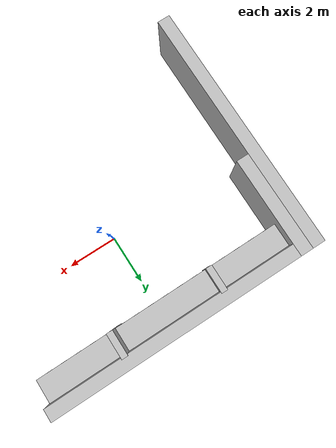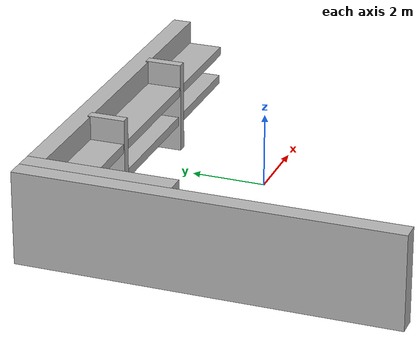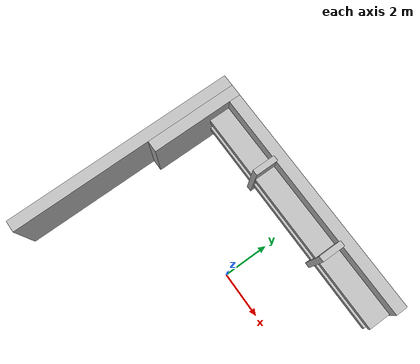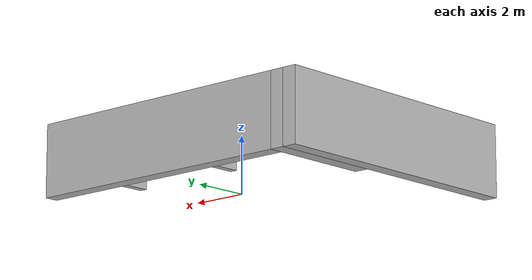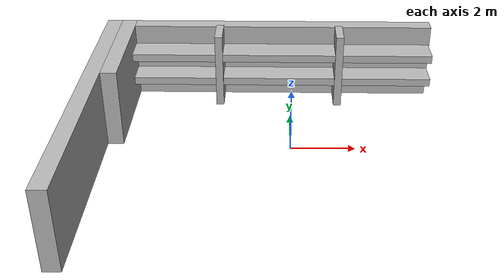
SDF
<?xml version='1.0'?>
<sdf version='1.6'>
  <model name='workspace_3'>
    <link name='link_0'>
      <inertial>
        <mass>1</mass>
        <inertia>
          <ixx>0.166667</ixx>
          <ixy>0</ixy>
          <ixz>0</ixz>
          <iyy>0.166667</iyy>
          <iyz>0</iyz>
          <izz>0.166667</izz>
        </inertia>
        <pose frame=''>0 0 0 0 -0 0</pose>
      </inertial>
      <pose frame=''>-6.00446 -0.625004 1.125 0 -0 0</pose>
      <gravity>1</gravity>
      <self_collide>0</self_collide>
      <kinematic>0</kinematic>
      <enable_wind>0</enable_wind>
      <visual name='visual'>
        <pose frame=''>0 0 0 0 -0 0</pose>
        <geometry>
          <box>
            <size>0.5 10 2.5</size>
          </box>
        </geometry>
        <material>
          <lighting>1</lighting>
          <shader type='vertex'>
            <normal_map>__default__</normal_map>
          </shader>
        </material>
        <transparency>0</transparency>
        <cast_shadows>1</cast_shadows>
      </visual>
      <collision name='collision'>
        <laser_retro>0</laser_retro>
        <max_contacts>10</max_contacts>
        <pose frame=''>0 0 0 0 -0 0</pose>
        <geometry>
          <box>
            <size>0.5 10 2.5</size>
          </box>
        </geometry>
        <surface>
          <friction>
            <ode>
              <mu>1</mu>
              <mu2>1</mu2>
              <fdir1>0 0 0</fdir1>
              <slip1>0</slip1>
              <slip2>0</slip2>
            </ode>
            <torsional>
              <coefficient>1</coefficient>
              <patch_radius>0</patch_radius>
              <surface_radius>0</surface_radius>
              <use_patch_radius>1</use_patch_radius>
              <ode>
                <slip>0</slip>
              </ode>
            </torsional>
          </friction>
          <bounce>
            <restitution_coefficient>0</restitution_coefficient>
            <threshold>1e+06</threshold>
          </bounce>
          <contact>
            <collide_without_contact>0</collide_without_contact>
            <collide_without_contact_bitmask>1</collide_without_contact_bitmask>
            <collide_bitmask>1</collide_bitmask>
            <ode>
              <soft_cfm>0</soft_cfm>
              <soft_erp>0.2</soft_erp>
              <kp>1e+13</kp>
              <kd>1</kd>
              <max_vel>0.01</max_vel>
              <min_depth>0</min_depth>
            </ode>
            <bullet>
              <split_impulse>1</split_impulse>
              <split_impulse_penetration_threshold>-0.01</split_impulse_penetration_threshold>
              <soft_cfm>0</soft_cfm>
              <soft_erp>0.2</soft_erp>
              <kp>1e+13</kp>
              <kd>1</kd>
            </bullet>
          </contact>
        </surface>
      </collision>
    </link>
    <link name='link_1'>
      <inertial>
        <mass>1</mass>
        <inertia>
          <ixx>0.166667</ixx>
          <ixy>0</ixy>
          <ixz>0</ixz>
          <iyy>0.166667</iyy>
          <iyz>0</iyz>
          <izz>0.166667</izz>
        </inertia>
        <pose frame=''>0 0 0 0 -0 0</pose>
      </inertial>
      <pose frame=''>-5.50446 2.375 1.125 0 -0 0</pose>
      <gravity>1</gravity>
      <self_collide>0</self_collide>
      <kinematic>0</kinematic>
      <enable_wind>0</enable_wind>
      <visual name='visual'>
        <pose frame=''>0 0 0 0 -0 0</pose>
        <geometry>
          <box>
            <size>0.5 4 2.5</size>
          </box>
        </geometry>
        <material>
          <lighting>1</lighting>
          <shader type='vertex'>
            <normal_map>__default__</normal_map>
          </shader>
        </material>
        <transparency>0</transparency>
        <cast_shadows>1</cast_shadows>
      </visual>
      <collision name='collision'>
        <laser_retro>0</laser_retro>
        <max_contacts>10</max_contacts>
        <pose frame=''>0 0 0 0 -0 0</pose>
        <geometry>
          <box>
            <size>0.5 4 2.5</size>
          </box>
        </geometry>
        <surface>
          <friction>
            <ode>
              <mu>1</mu>
              <mu2>1</mu2>
              <fdir1>0 0 0</fdir1>
              <slip1>0</slip1>
              <slip2>0</slip2>
            </ode>
            <torsional>
              <coefficient>1</coefficient>
              <patch_radius>0</patch_radius>
              <surface_radius>0</surface_radius>
              <use_patch_radius>1</use_patch_radius>
              <ode>
                <slip>0</slip>
              </ode>
            </torsional>
          </friction>
          <bounce>
            <restitution_coefficient>0</restitution_coefficient>
            <threshold>1e+06</threshold>
          </bounce>
          <contact>
            <collide_without_contact>0</collide_without_contact>
            <collide_without_contact_bitmask>1</collide_without_contact_bitmask>
            <collide_bitmask>1</collide_bitmask>
            <ode>
              <soft_cfm>0</soft_cfm>
              <soft_erp>0.2</soft_erp>
              <kp>1e+13</kp>
              <kd>1</kd>
              <max_vel>0.01</max_vel>
              <min_depth>0</min_depth>
            </ode>
            <bullet>
              <split_impulse>1</split_impulse>
              <split_impulse_penetration_threshold>-0.01</split_impulse_penetration_threshold>
              <soft_cfm>0</soft_cfm>
              <soft_erp>0.2</soft_erp>
              <kp>1e+13</kp>
              <kd>1</kd>
            </bullet>
          </contact>
        </surface>
      </collision>
    </link>
    <link name='link_2'>
      <inertial>
        <mass>1</mass>
        <inertia>
          <ixx>0.166667</ixx>
          <ixy>0</ixy>
          <ixz>0</ixz>
          <iyy>0.166667</iyy>
          <iyz>0</iyz>
          <izz>0.166667</izz>
        </inertia>
        <pose frame=''>0 0 0 0 -0 0</pose>
      </inertial>
      <pose frame=''>-0.254462 4.125 1.125 0 -0 0</pose>
      <gravity>1</gravity>
      <self_collide>0</self_collide>
      <kinematic>0</kinematic>
      <enable_wind>0</enable_wind>
      <visual name='visual'>
        <pose frame=''>0 0 0 0 -0 0</pose>
        <geometry>
          <box>
            <size>10 0.5 2.5</size>
          </box>
        </geometry>
        <material>
          <lighting>1</lighting>
          <shader type='vertex'>
            <normal_map>__default__</normal_map>
          </shader>
        </material>
        <transparency>0</transparency>
        <cast_shadows>1</cast_shadows>
      </visual>
      <collision name='collision'>
        <laser_retro>0</laser_retro>
        <max_contacts>10</max_contacts>
        <pose frame=''>0 0 0 0 -0 0</pose>
        <geometry>
          <box>
            <size>10 0.5 2.5</size>
          </box>
        </geometry>
        <surface>
          <friction>
            <ode>
              <mu>1</mu>
              <mu2>1</mu2>
              <fdir1>0 0 0</fdir1>
              <slip1>0</slip1>
              <slip2>0</slip2>
            </ode>
            <torsional>
              <coefficient>1</coefficient>
              <patch_radius>0</patch_radius>
              <surface_radius>0</surface_radius>
              <use_patch_radius>1</use_patch_radius>
              <ode>
                <slip>0</slip>
              </ode>
            </torsional>
          </friction>
          <bounce>
            <restitution_coefficient>0</restitution_coefficient>
            <threshold>1e+06</threshold>
          </bounce>
          <contact>
            <collide_without_contact>0</collide_without_contact>
            <collide_without_contact_bitmask>1</collide_without_contact_bitmask>
            <collide_bitmask>1</collide_bitmask>
            <ode>
              <soft_cfm>0</soft_cfm>
              <soft_erp>0.2</soft_erp>
              <kp>1e+13</kp>
              <kd>1</kd>
              <max_vel>0.01</max_vel>
              <min_depth>0</min_depth>
            </ode>
            <bullet>
              <split_impulse>1</split_impulse>
              <split_impulse_penetration_threshold>-0.01</split_impulse_penetration_threshold>
              <soft_cfm>0</soft_cfm>
              <soft_erp>0.2</soft_erp>
              <kp>1e+13</kp>
              <kd>1</kd>
            </bullet>
          </contact>
        </surface>
      </collision>
    </link>
    <link name='link_3'>
      <inertial>
        <mass>1</mass>
        <inertia>
          <ixx>0.166667</ixx>
          <ixy>0</ixy>
          <ixz>0</ixz>
          <iyy>0.166667</iyy>
          <iyz>0</iyz>
          <izz>0.166667</izz>
        </inertia>
        <pose frame=''>0 0 0 0 -0 0</pose>
      </inertial>
      <pose frame=''>-0.296129 3.45833 1.625 0 -0 0</pose>
      <gravity>1</gravity>
      <self_collide>0</self_collide>
      <kinematic>0</kinematic>
      <enable_wind>0</enable_wind>
      <visual name='visual'>
        <pose frame=''>0 0 0 0 -0 0</pose>
        <geometry>
          <box>
            <size>10 1 0.25</size>
          </box>
        </geometry>
        <material>
          <lighting>1</lighting>
          <shader type='vertex'>
            <normal_map>__default__</normal_map>
          </shader>
        </material>
        <transparency>0</transparency>
        <cast_shadows>1</cast_shadows>
      </visual>
      <collision name='collision'>
        <laser_retro>0</laser_retro>
        <max_contacts>10</max_contacts>
        <pose frame=''>0 0 0 0 -0 0</pose>
        <geometry>
          <box>
            <size>10 1 0.25</size>
          </box>
        </geometry>
        <surface>
          <friction>
            <ode>
              <mu>1</mu>
              <mu2>1</mu2>
              <fdir1>0 0 0</fdir1>
              <slip1>0</slip1>
              <slip2>0</slip2>
            </ode>
            <torsional>
              <coefficient>1</coefficient>
              <patch_radius>0</patch_radius>
              <surface_radius>0</surface_radius>
              <use_patch_radius>1</use_patch_radius>
              <ode>
                <slip>0</slip>
              </ode>
            </torsional>
          </friction>
          <bounce>
            <restitution_coefficient>0</restitution_coefficient>
            <threshold>1e+06</threshold>
          </bounce>
          <contact>
            <collide_without_contact>0</collide_without_contact>
            <collide_without_contact_bitmask>1</collide_without_contact_bitmask>
            <collide_bitmask>1</collide_bitmask>
            <ode>
              <soft_cfm>0</soft_cfm>
              <soft_erp>0.2</soft_erp>
              <kp>1e+13</kp>
              <kd>1</kd>
              <max_vel>0.01</max_vel>
              <min_depth>0</min_depth>
            </ode>
            <bullet>
              <split_impulse>1</split_impulse>
              <split_impulse_penetration_threshold>-0.01</split_impulse_penetration_threshold>
              <soft_cfm>0</soft_cfm>
              <soft_erp>0.2</soft_erp>
              <kp>1e+13</kp>
              <kd>1</kd>
            </bullet>
          </contact>
        </surface>
      </collision>
    </link>
    <link name='link_3_clone'>
      <inertial>
        <mass>1</mass>
        <inertia>
          <ixx>0.166667</ixx>
          <ixy>0</ixy>
          <ixz>0</ixz>
          <iyy>0.166667</iyy>
          <iyz>0</iyz>
          <izz>0.166667</izz>
        </inertia>
        <pose frame=''>0 0 0 0 -0 0</pose>
      </inertial>
      <pose frame=''>-0.27321 3.5 0.75 0 -0 0</pose>
      <gravity>1</gravity>
      <self_collide>0</self_collide>
      <kinematic>0</kinematic>
      <enable_wind>0</enable_wind>
      <visual name='visual'>
        <pose frame=''>0 0 0 0 -0 0</pose>
        <geometry>
          <box>
            <size>10 1 0.25</size>
          </box>
        </geometry>
        <material>
          <lighting>1</lighting>
          <shader type='vertex'>
            <normal_map>__default__</normal_map>
          </shader>
        </material>
        <transparency>0</transparency>
        <cast_shadows>1</cast_shadows>
      </visual>
      <collision name='collision'>
        <laser_retro>0</laser_retro>
        <max_contacts>10</max_contacts>
        <pose frame=''>0 0 0 0 -0 0</pose>
        <geometry>
          <box>
            <size>10 1 0.25</size>
          </box>
        </geometry>
        <surface>
          <friction>
            <ode>
              <mu>1</mu>
              <mu2>1</mu2>
              <fdir1>0 0 0</fdir1>
              <slip1>0</slip1>
              <slip2>0</slip2>
            </ode>
            <torsional>
              <coefficient>1</coefficient>
              <patch_radius>0</patch_radius>
              <surface_radius>0</surface_radius>
              <use_patch_radius>1</use_patch_radius>
              <ode>
                <slip>0</slip>
              </ode>
            </torsional>
          </friction>
          <bounce>
            <restitution_coefficient>0</restitution_coefficient>
            <threshold>1e+06</threshold>
          </bounce>
          <contact>
            <collide_without_contact>0</collide_without_contact>
            <collide_without_contact_bitmask>1</collide_without_contact_bitmask>
            <collide_bitmask>1</collide_bitmask>
            <ode>
              <soft_cfm>0</soft_cfm>
              <soft_erp>0.2</soft_erp>
              <kp>1e+13</kp>
              <kd>1</kd>
              <max_vel>0.01</max_vel>
              <min_depth>0</min_depth>
            </ode>
            <bullet>
              <split_impulse>1</split_impulse>
              <split_impulse_penetration_threshold>-0.01</split_impulse_penetration_threshold>
              <soft_cfm>0</soft_cfm>
              <soft_erp>0.2</soft_erp>
              <kp>1e+13</kp>
              <kd>1</kd>
            </bullet>
          </contact>
        </surface>
      </collision>
    </link>
    <link name='link_4'>
      <inertial>
        <mass>1</mass>
        <inertia>
          <ixx>0.166667</ixx>
          <ixy>0</ixy>
          <ixz>0</ixz>
          <iyy>0.166667</iyy>
          <iyz>0</iyz>
          <izz>0.166667</izz>
        </inertia>
        <pose frame=''>0 0 0 0 -0 0</pose>
      </inertial>
      <pose frame=''>-2.3728 3.44166 1.15 0 -0 0</pose>
      <gravity>1</gravity>
      <self_collide>0</self_collide>
      <kinematic>0</kinematic>
      <enable_wind>0</enable_wind>
      <visual name='visual'>
        <pose frame=''>0 0 0 0 -0 0</pose>
        <geometry>
          <box>
            <size>0.25 1 2.5</size>
          </box>
        </geometry>
        <material>
          <lighting>1</lighting>
          <shader type='vertex'>
            <normal_map>__default__</normal_map>
          </shader>
        </material>
        <transparency>0</transparency>
        <cast_shadows>1</cast_shadows>
      </visual>
      <collision name='collision'>
        <laser_retro>0</laser_retro>
        <max_contacts>10</max_contacts>
        <pose frame=''>0 0 0 0 -0 0</pose>
        <geometry>
          <box>
            <size>0.25 1 2.5</size>
          </box>
        </geometry>
        <surface>
          <friction>
            <ode>
              <mu>1</mu>
              <mu2>1</mu2>
              <fdir1>0 0 0</fdir1>
              <slip1>0</slip1>
              <slip2>0</slip2>
            </ode>
            <torsional>
              <coefficient>1</coefficient>
              <patch_radius>0</patch_radius>
              <surface_radius>0</surface_radius>
              <use_patch_radius>1</use_patch_radius>
              <ode>
                <slip>0</slip>
              </ode>
            </torsional>
          </friction>
          <bounce>
            <restitution_coefficient>0</restitution_coefficient>
            <threshold>1e+06</threshold>
          </bounce>
          <contact>
            <collide_without_contact>0</collide_without_contact>
            <collide_without_contact_bitmask>1</collide_without_contact_bitmask>
            <collide_bitmask>1</collide_bitmask>
            <ode>
              <soft_cfm>0</soft_cfm>
              <soft_erp>0.2</soft_erp>
              <kp>1e+13</kp>
              <kd>1</kd>
              <max_vel>0.01</max_vel>
              <min_depth>0</min_depth>
            </ode>
            <bullet>
              <split_impulse>1</split_impulse>
              <split_impulse_penetration_threshold>-0.01</split_impulse_penetration_threshold>
              <soft_cfm>0</soft_cfm>
              <soft_erp>0.2</soft_erp>
              <kp>1e+13</kp>
              <kd>1</kd>
            </bullet>
          </contact>
        </surface>
      </collision>
    </link>
    <link name='link_4_clone'>
      <inertial>
        <mass>1</mass>
        <inertia>
          <ixx>0.166667</ixx>
          <ixy>0</ixy>
          <ixz>0</ixz>
          <iyy>0.166667</iyy>
          <iyz>0</iyz>
          <izz>0.166667</izz>
        </inertia>
        <pose frame=''>0 0 0 0 -0 0</pose>
      </inertial>
      <pose frame=''>1.6272 3.44166 1.15 0 -0 0</pose>
      <gravity>1</gravity>
      <self_collide>0</self_collide>
      <kinematic>0</kinematic>
      <enable_wind>0</enable_wind>
      <visual name='visual'>
        <pose frame=''>0 0 0 0 -0 0</pose>
        <geometry>
          <box>
            <size>0.25 1 2.5</size>
          </box>
        </geometry>
        <material>
          <lighting>1</lighting>
          <shader type='vertex'>
            <normal_map>__default__</normal_map>
          </shader>
        </material>
        <transparency>0</transparency>
        <cast_shadows>1</cast_shadows>
      </visual>
      <collision name='collision'>
        <laser_retro>0</laser_retro>
        <max_contacts>10</max_contacts>
        <pose frame=''>0 0 0 0 -0 0</pose>
        <geometry>
          <box>
            <size>0.25 1 2.5</size>
          </box>
        </geometry>
        <surface>
          <friction>
            <ode>
              <mu>1</mu>
              <mu2>1</mu2>
              <fdir1>0 0 0</fdir1>
              <slip1>0</slip1>
              <slip2>0</slip2>
            </ode>
            <torsional>
              <coefficient>1</coefficient>
              <patch_radius>0</patch_radius>
              <surface_radius>0</surface_radius>
              <use_patch_radius>1</use_patch_radius>
              <ode>
                <slip>0</slip>
              </ode>
            </torsional>
          </friction>
          <bounce>
            <restitution_coefficient>0</restitution_coefficient>
            <threshold>1e+06</threshold>
          </bounce>
          <contact>
            <collide_without_contact>0</collide_without_contact>
            <collide_without_contact_bitmask>1</collide_without_contact_bitmask>
            <collide_bitmask>1</collide_bitmask>
            <ode>
              <soft_cfm>0</soft_cfm>
              <soft_erp>0.2</soft_erp>
              <kp>1e+13</kp>
              <kd>1</kd>
              <max_vel>0.01</max_vel>
              <min_depth>0</min_depth>
            </ode>
            <bullet>
              <split_impulse>1</split_impulse>
              <split_impulse_penetration_threshold>-0.01</split_impulse_penetration_threshold>
              <soft_cfm>0</soft_cfm>
              <soft_erp>0.2</soft_erp>
              <kp>1e+13</kp>
              <kd>1</kd>
            </bullet>
          </contact>
        </surface>
      </collision>
    </link>
    <joint name='link_0_JOINT_0' type='fixed'>
      <parent>link_0</parent>
      <child>link_1</child>
      <pose frame=''>0 0 0 0 -0 0</pose>
      <physics>
        <ode>
          <limit>
            <cfm>0</cfm>
            <erp>0.2</erp>
          </limit>
          <suspension>
            <cfm>0</cfm>
            <erp>0.2</erp>
          </suspension>
        </ode>
      </physics>
    </joint>
    <joint name='link_1_JOINT_1' type='fixed'>
      <parent>link_1</parent>
      <child>link_2</child>
      <pose frame=''>0 0 0 0 -0 0</pose>
      <physics>
        <ode>
          <limit>
            <cfm>0</cfm>
            <erp>0.2</erp>
          </limit>
          <suspension>
            <cfm>0</cfm>
            <erp>0.2</erp>
          </suspension>
        </ode>
      </physics>
    </joint>
    <joint name='link_2_JOINT_2' type='fixed'>
      <parent>link_2</parent>
      <child>link_3</child>
      <pose frame=''>0 0 0 0 -0 0</pose>
      <physics>
        <ode>
          <limit>
            <cfm>0</cfm>
            <erp>0.2</erp>
          </limit>
          <suspension>
            <cfm>0</cfm>
            <erp>0.2</erp>
          </suspension>
        </ode>
      </physics>
    </joint>
    <joint name='link_2_JOINT_3' type='fixed'>
      <parent>link_2</parent>
      <child>link_3_clone</child>
      <pose frame=''>0 0 0 0 -0 0</pose>
      <physics>
        <ode>
          <limit>
            <cfm>0</cfm>
            <erp>0.2</erp>
          </limit>
          <suspension>
            <cfm>0</cfm>
            <erp>0.2</erp>
          </suspension>
        </ode>
      </physics>
    </joint>
    <joint name='link_2_JOINT_4' type='fixed'>
      <parent>link_2</parent>
      <child>link_4</child>
      <pose frame=''>0 0 0 0 -0 0</pose>
      <physics>
        <ode>
          <limit>
            <cfm>0</cfm>
            <erp>0.2</erp>
          </limit>
          <suspension>
            <cfm>0</cfm>
            <erp>0.2</erp>
          </suspension>
        </ode>
      </physics>
    </joint>
    <joint name='link_2_JOINT_5' type='fixed'>
      <parent>link_2</parent>
      <child>link_4_clone</child>
      <pose frame=''>0 0 0 0 -0 0</pose>
      <physics>
        <ode>
          <limit>
            <cfm>0</cfm>
            <erp>0.2</erp>
          </limit>
          <suspension>
            <cfm>0</cfm>
            <erp>0.2</erp>
          </suspension>
        </ode>
      </physics>
    </joint>
    <static>0</static>
    <allow_auto_disable>1</allow_auto_disable>
  </model>
</sdf>
